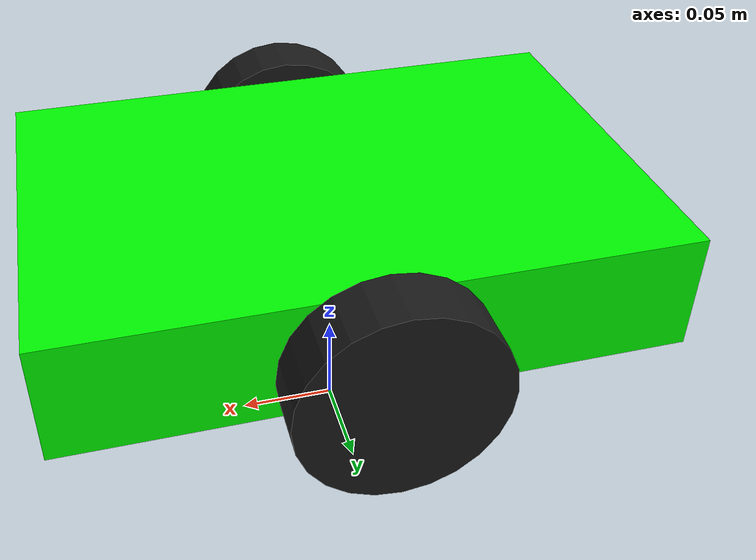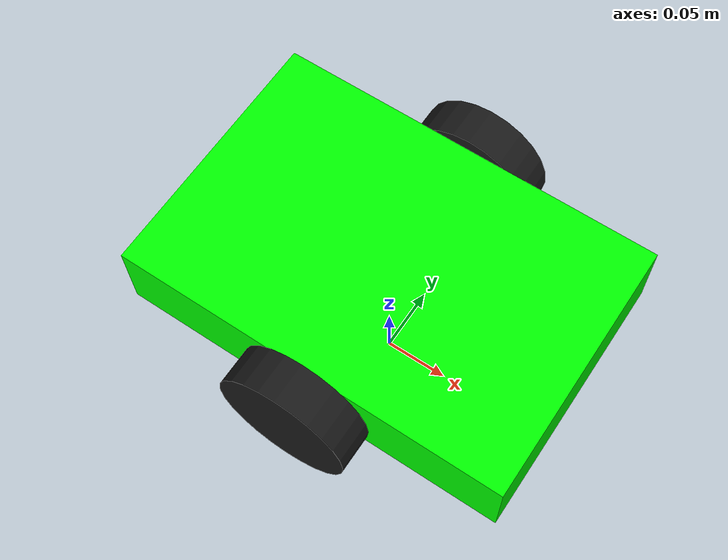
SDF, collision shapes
<?xml version="1.0"?>
<sdf version="1.8">
  <model name="swarm_bot">
    <pose>0 0 0.06 0 0 0</pose>

    <link name="chassis">
      <pose>0 0 0.06 0 0 0</pose>

      <inertial>
        <mass>1.2</mass>
        <inertia>
          <ixx>0.01</ixx>
          <iyy>0.02</iyy>
          <izz>0.03</izz>
          <ixy>0.0</ixy>
          <ixz>0.0</ixz>
          <iyz>0.0</iyz>
        </inertia>
      </inertial>

      <!-- Main centered collision body -->
      <collision name="collision">
        <geometry>
          <box>
            <size>0.30 0.20 0.06</size>
          </box>
        </geometry>
      </collision>

      <!-- Main centered chassis body -->
      <visual name="visual_body">
        <geometry>
          <mesh>
            <uri>model://meshes/swarm_robot_complete.obj</uri>
            <size>0.001 0.001 0.001</size>
          </mesh>
        </geometry>
      </visual>

      <!-- Exact controller/odom origin marker -->
      <visual name="origin_marker">
        <pose>0 0 0.105 0 0 0</pose>
        <geometry>
          <sphere>
            <radius>0.032</radius>
          </sphere>
        </geometry>
        <material>
          <ambient>0.0 1.0 0.0 1</ambient>
          <diffuse>0.0 1.0 0.0 1</diffuse>
          <specular>0.1 0.1 0.1 1</specular>
        </material>
      </visual>

      <!-- Long white centerline on top of the robot.
           This shows the actual x-axis/yaw direction. -->
      <visual name="top_centerline">
        <pose>0 0 0.096 0 0 0</pose>
        <geometry>
          <box>
            <size>0.31 0.012 0.008</size>
          </box>
        </geometry>
        <material>
          <ambient>1.0 1.0 1.0 1</ambient>
          <diffuse>1.0 1.0 1.0 1</diffuse>
        </material>
      </visual>

      <!-- Cross line through the origin.
           This makes sideways visual offsets obvious. -->
      <visual name="top_crossline">
        <pose>0 0 0.099 0 0 0</pose>
        <geometry>
          <box>
            <size>0.012 0.22 0.008</size>
          </box>
        </geometry>
        <material>
          <ambient>0.0 1.0 0.0 1</ambient>
          <diffuse>0.0 1.0 0.0 1</diffuse>
        </material>
      </visual>

      <!-- FRONT marker: red strip, centered across width -->
      <visual name="front_marker">
        <pose>0.145 0 0.095 0 0 0</pose>
        <geometry>
          <box>
            <size>0.025 0.20 0.010</size>
          </box>
        </geometry>
        <material>
          <ambient>0.90 0.05 0.05 1</ambient>
          <diffuse>1.00 0.10 0.10 1</diffuse>
        </material>
      </visual>

      <!-- BACK marker: blue strip, centered across width -->
      <visual name="rear_marker">
        <pose>-0.145 0 0.095 0 0 0</pose>
        <geometry>
          <box>
            <size>0.025 0.20 0.010</size>
          </box>
        </geometry>
        <material>
          <ambient>0.05 0.10 0.90 1</ambient>
          <diffuse>0.10 0.20 1.00 1</diffuse>
        </material>
      </visual>

      <!-- Front arrow head. It is symmetric in Y, so it should not look side-offset. -->
      <visual name="front_arrow_stem">
        <pose>0.175 0 0.097 0 0 0</pose>
        <geometry>
          <box>
            <size>0.050 0.045 0.010</size>
          </box>
        </geometry>
        <material>
          <ambient>1.0 0.55 0.0 1</ambient>
          <diffuse>1.0 0.65 0.0 1</diffuse>
        </material>
      </visual>

      <!-- Left and right yellow side bars. These make true body width visible. -->
      <visual name="left_side_bar">
        <pose>0 0.105 0.092 0 0 0</pose>
        <geometry>
          <box>
            <size>0.30 0.010 0.010</size>
          </box>
        </geometry>
        <material>
          <ambient>1.0 0.9 0.0 1</ambient>
          <diffuse>1.0 0.9 0.0 1</diffuse>
        </material>
      </visual>

      <visual name="right_side_bar">
        <pose>0 -0.105 0.092 0 0 0</pose>
        <geometry>
          <box>
            <size>0.30 0.010 0.010</size>
          </box>
        </geometry>
        <material>
          <ambient>1.0 0.9 0.0 1</ambient>
          <diffuse>1.0 0.9 0.0 1</diffuse>
        </material>
      </visual>

      <!-- Centered lidar housing.
           Moved from x=0.10 to x=0.0 so the robot no longer looks front-heavy.
           The sensor is also centered below. -->
      <visual name="lidar_visual">
        <pose>0 0 0.135 0 0 0</pose>
        <geometry>
          <cylinder>
            <radius>0.030</radius>
            <length>0.030</length>
          </cylinder>
        </geometry>
        <material>
          <ambient>0.10 0.10 0.10 1</ambient>
          <diffuse>0.15 0.15 0.15 1</diffuse>
          <specular>0.20 0.20 0.20 1</specular>
        </material>
      </visual>

      <visual name="lidar_cap">
        <pose>0 0 0.153 0 0 0</pose>
        <geometry>
          <cylinder>
            <radius>0.018</radius>
            <length>0.008</length>
          </cylinder>
        </geometry>
        <material>
          <ambient>0.10 0.70 0.70 1</ambient>
          <diffuse>0.15 0.90 0.90 1</diffuse>
          <specular>0.20 0.20 0.20 1</specular>
        </material>
      </visual>

      <sensor name="lidar" type="gpu_lidar">
        <pose>0 0 0.135 0 0 0</pose>
        <update_rate>8</update_rate>
        <ray>
          <scan>
            <horizontal>
              <samples>360</samples>
              <resolution>1</resolution>
              <min_angle>-3.14159</min_angle>
              <max_angle>3.14159</max_angle>
            </horizontal>
          </scan>
          <range>
            <min>0.10</min>
            <max>8.0</max>
            <resolution>0.02</resolution>
          </range>
        </ray>
        <always_on>1</always_on>
        <visualize>false</visualize>
      </sensor>
    </link>

    <!-- Left wheel -->
    <link name="left_wheel">
      <pose>0 0.115 0.05 1.5708 0 0</pose>
      <inertial>
        <mass>0.15</mass>
        <inertia>
          <ixx>0.0003</ixx>
          <iyy>0.0003</iyy>
          <izz>0.0003</izz>
          <ixy>0.0</ixy>
          <ixz>0.0</ixz>
          <iyz>0.0</iyz>
        </inertia>
      </inertial>
      <collision name="collision">
        <geometry>
          <cylinder>
            <radius>0.05</radius>
            <length>0.03</length>
          </cylinder>
        </geometry>
        <surface>
          <friction>
            <ode>
              <mu>5.0</mu>
              <mu2>5.0</mu2>
            </ode>
          </friction>
        </surface>
      </collision>
      <visual name="visual">
        <geometry>
          <cylinder>
            <radius>0.05</radius>
            <length>0.03</length>
          </cylinder>
        </geometry>
        <material>
          <ambient>0.05 0.05 0.05 1</ambient>
          <diffuse>0.10 0.10 0.10 1</diffuse>
          <specular>0.05 0.05 0.05 1</specular>
        </material>
      </visual>
    </link>

    <!-- Right wheel -->
    <link name="right_wheel">
      <pose>0 -0.115 0.05 1.5708 0 0</pose>
      <inertial>
        <mass>0.15</mass>
        <inertia>
          <ixx>0.0003</ixx>
          <iyy>0.0003</iyy>
          <izz>0.0003</izz>
          <ixy>0.0</ixy>
          <ixz>0.0</ixz>
          <iyz>0.0</iyz>
        </inertia>
      </inertial>
      <collision name="collision">
        <geometry>
          <cylinder>
            <radius>0.05</radius>
            <length>0.03</length>
          </cylinder>
        </geometry>
        <surface>
          <friction>
            <ode>
              <mu>5.0</mu>
              <mu2>5.0</mu2>
            </ode>
          </friction>
        </surface>
      </collision>
      <visual name="visual">
        <geometry>
          <cylinder>
            <radius>0.05</radius>
            <length>0.03</length>
          </cylinder>
        </geometry>
        <material>
          <ambient>0.05 0.05 0.05 1</ambient>
          <diffuse>0.10 0.10 0.10 1</diffuse>
          <specular>0.05 0.05 0.05 1</specular>
        </material>
      </visual>
    </link>

    <joint name="left_wheel_joint" type="revolute">
      <parent>chassis</parent>
      <child>left_wheel</child>
      <axis>
        <xyz expressed_in="__model__">0 1 0</xyz>
        <limit>
          <lower>-1e16</lower>
          <upper>1e16</upper>
        </limit>
        <dynamics>
          <damping>0.1</damping>
        </dynamics>
      </axis>
    </joint>

    <joint name="right_wheel_joint" type="revolute">
      <parent>chassis</parent>
      <child>right_wheel</child>
      <axis>
        <xyz expressed_in="__model__">0 1 0</xyz>
        <limit>
          <lower>-1e16</lower>
          <upper>1e16</upper>
        </limit>
        <dynamics>
          <damping>0.1</damping>
        </dynamics>
      </axis>
    </joint>

    <!-- Rear caster -->
    <link name="caster">
      <pose>-0.12 0 0.025 0 0 0</pose>
      <inertial>
        <mass>0.03</mass>
        <inertia>
          <ixx>0.00005</ixx>
          <iyy>0.00005</iyy>
          <izz>0.00005</izz>
          <ixy>0.0</ixy>
          <ixz>0.0</ixz>
          <iyz>0.0</iyz>
        </inertia>
      </inertial>
      <collision name="collision">
        <geometry>
          <sphere>
            <radius>0.025</radius>
          </sphere>
        </geometry>
      </collision>
      <visual name="visual">
        <geometry>
          <sphere>
            <radius>0.025</radius>
          </sphere>
        </geometry>
        <material>
          <ambient>0.15 0.15 0.15 1</ambient>
          <diffuse>0.20 0.20 0.20 1</diffuse>
          <specular>0.05 0.05 0.05 1</specular>
        </material>
      </visual>
    </link>

    <joint name="caster_joint" type="ball">
      <parent>chassis</parent>
      <child>caster</child>
    </joint>

    <plugin filename="gz-sim-diff-drive-system" name="gz::sim::systems::DiffDrive">
      <left_joint>left_wheel_joint</left_joint>
      <right_joint>right_wheel_joint</right_joint>

      <wheel_separation>0.23</wheel_separation>
      <wheel_radius>0.05</wheel_radius>

      <frame_id>odom</frame_id>
      <child_frame_id>chassis</child_frame_id>

      <odom_publish_frequency>10</odom_publish_frequency>
    </plugin>
  </model>
</sdf>
